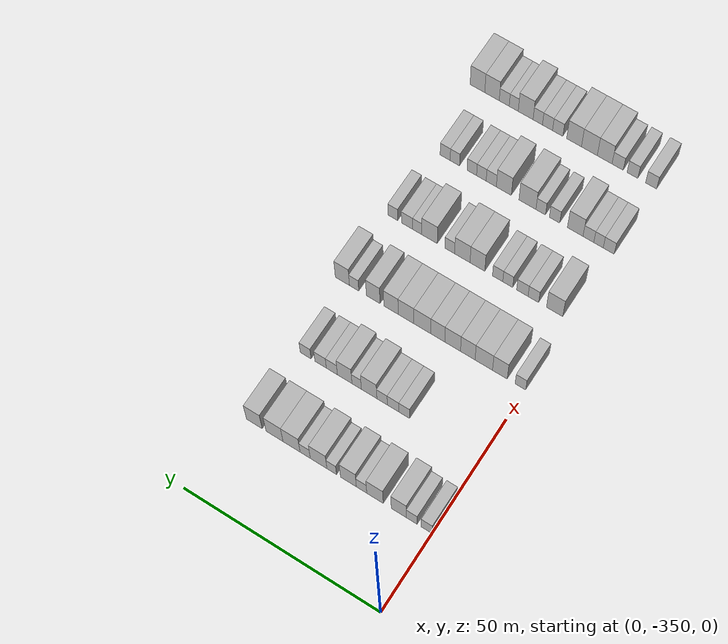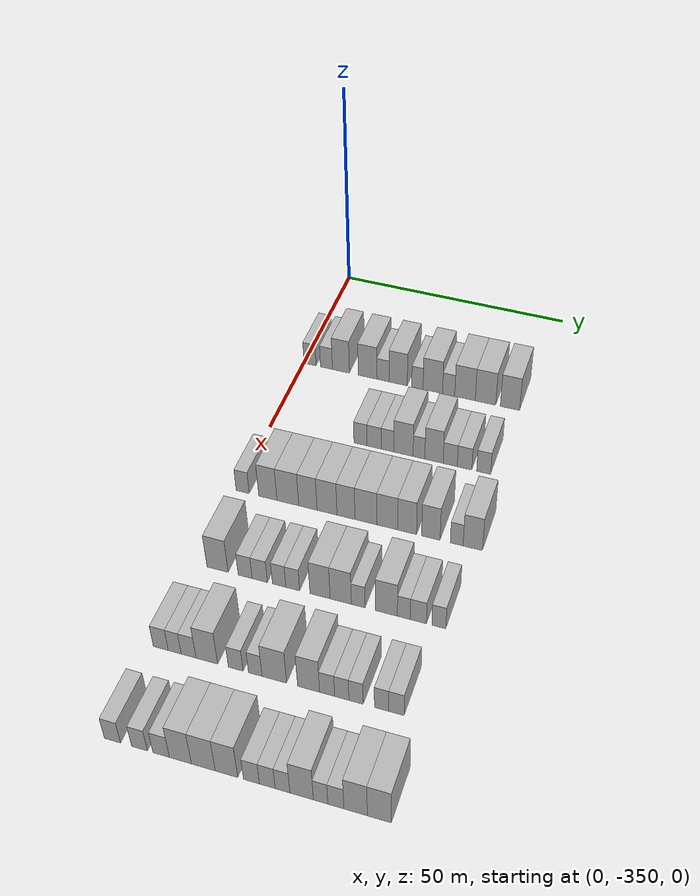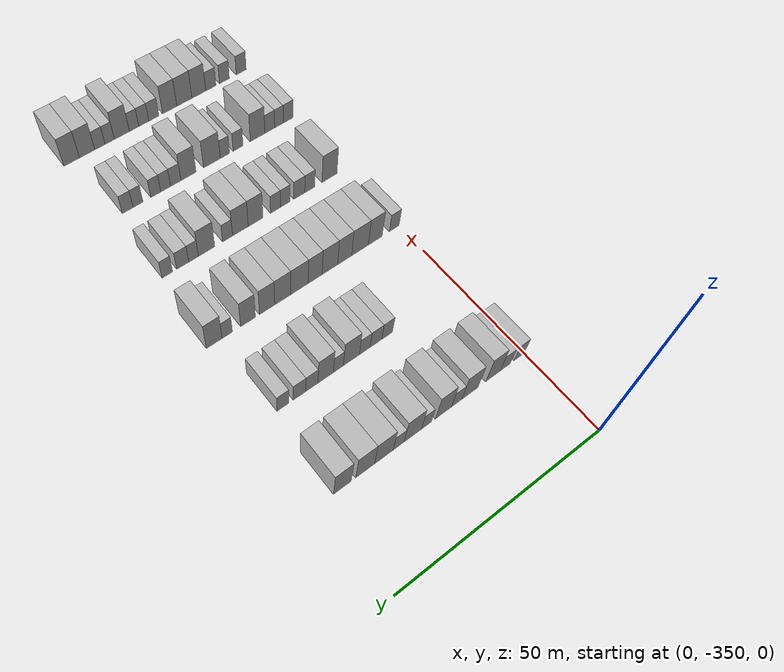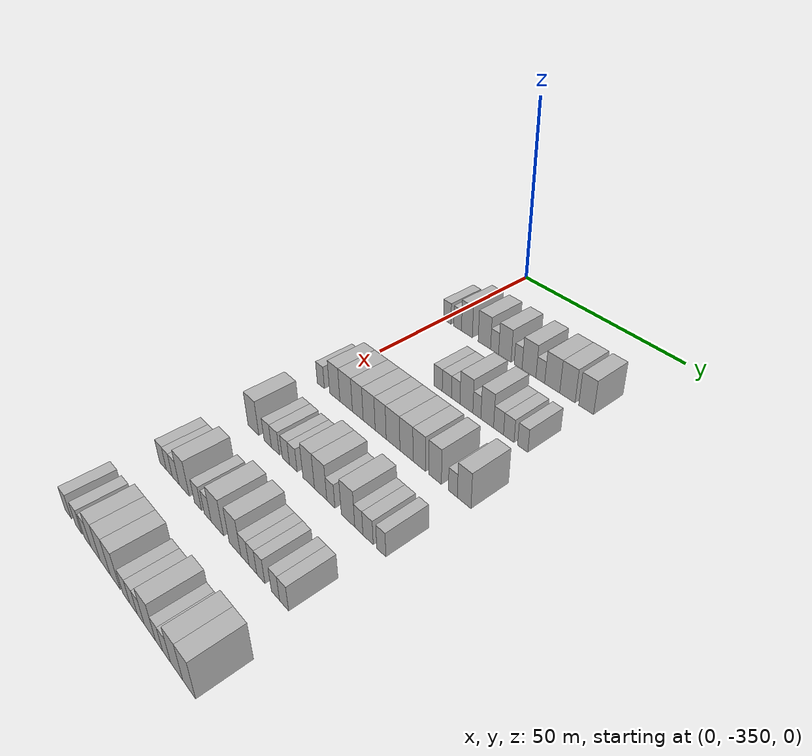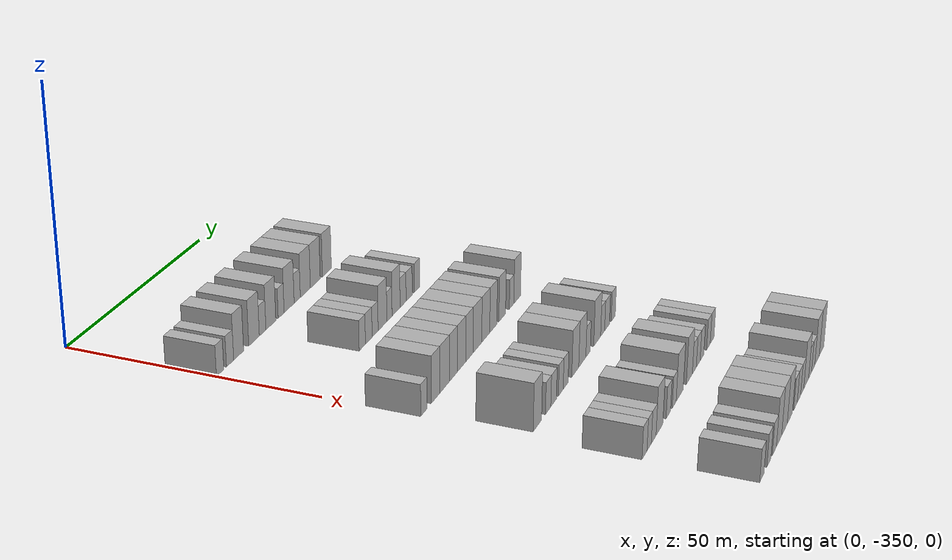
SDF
<sdf version="1.6">
 <world name="default">
  <model name="building_1">
   <static>1</static>
   <pose>25.0000 -348.6272 0 0.000000 0.000000 0.000000</pose>
   <link name="link">
    <pose>0 0 3.00 0 0 0</pose>
    <collision name="collision"><geometry><box><size>10.0000 2.7456 6.0000</size></box></geometry></collision>
    <visual name="visual">
     <cast_shadows>0</cast_shadows>
     <geometry><box><size>10.0000 2.7456 6.0000</size></box></geometry>
     <material>
      <script>
       <uri>model://HANNAS_wall/materials/scripts</uri>
       <uri>model://HANNAS_wall/materials/textures</uri>
       <name>vrc/HANNAS_wall</name>
      </script>
     </material>
    </visual>
   </link>
  </model>
  <model name="building_2">
   <static>1</static>
   <pose>25.0000 -344.8946 0 0.000000 0.000000 0.000000</pose>
   <link name="link">
    <pose>0 0 3.00 0 0 0</pose>
    <collision name="collision"><geometry><box><size>10.0000 2.7197 6.0000</size></box></geometry></collision>
    <visual name="visual">
     <cast_shadows>0</cast_shadows>
     <geometry><box><size>10.0000 2.7197 6.0000</size></box></geometry>
     <material>
      <script>
       <uri>model://HANNAS_wall/materials/scripts</uri>
       <uri>model://HANNAS_wall/materials/textures</uri>
       <name>vrc/HANNAS_wall</name>
      </script>
     </material>
    </visual>
   </link>
  </model>
  <model name="building_3">
   <static>1</static>
   <pose>25.0000 -341.6259 0 0.000000 0.000000 0.000000</pose>
   <link name="link">
    <pose>0 0 4.50 0 0 0</pose>
    <collision name="collision"><geometry><box><size>10.0000 3.8177 9.0000</size></box></geometry></collision>
    <visual name="visual">
     <cast_shadows>0</cast_shadows>
     <geometry><box><size>10.0000 3.8177 9.0000</size></box></geometry>
     <material>
      <script>
       <uri>model://HANNAS_wall/materials/scripts</uri>
       <uri>model://HANNAS_wall/materials/textures</uri>
       <name>vrc/HANNAS_wall</name>
      </script>
     </material>
    </visual>
   </link>
  </model>
  <model name="building_4">
   <static>1</static>
   <pose>25.0000 -335.6298 0 0.000000 0.000000 0.000000</pose>
   <link name="link">
    <pose>0 0 4.50 0 0 0</pose>
    <collision name="collision"><geometry><box><size>10.0000 4.1745 9.0000</size></box></geometry></collision>
    <visual name="visual">
     <cast_shadows>0</cast_shadows>
     <geometry><box><size>10.0000 4.1745 9.0000</size></box></geometry>
     <material>
      <script>
       <uri>model://HANNAS_wall/materials/scripts</uri>
       <uri>model://HANNAS_wall/materials/textures</uri>
       <name>vrc/HANNAS_wall</name>
      </script>
     </material>
    </visual>
   </link>
  </model>
  <model name="building_5">
   <static>1</static>
   <pose>25.0000 -332.2178 0 0.000000 0.000000 0.000000</pose>
   <link name="link">
    <pose>0 0 3.00 0 0 0</pose>
    <collision name="collision"><geometry><box><size>10.0000 2.6495 6.0000</size></box></geometry></collision>
    <visual name="visual">
     <cast_shadows>0</cast_shadows>
     <geometry><box><size>10.0000 2.6495 6.0000</size></box></geometry>
     <material>
      <script>
       <uri>model://HANNAS_wall/materials/scripts</uri>
       <uri>model://HANNAS_wall/materials/textures</uri>
       <name>vrc/HANNAS_wall</name>
      </script>
     </material>
    </visual>
   </link>
  </model>
  <model name="building_6">
   <static>1</static>
   <pose>25.0000 -328.8747 0 0.000000 0.000000 0.000000</pose>
   <link name="link">
    <pose>0 0 4.50 0 0 0</pose>
    <collision name="collision"><geometry><box><size>10.0000 4.0367 9.0000</size></box></geometry></collision>
    <visual name="visual">
     <cast_shadows>0</cast_shadows>
     <geometry><box><size>10.0000 4.0367 9.0000</size></box></geometry>
     <material>
      <script>
       <uri>model://HANNAS_wall/materials/scripts</uri>
       <uri>model://HANNAS_wall/materials/textures</uri>
       <name>vrc/HANNAS_wall</name>
      </script>
     </material>
    </visual>
   </link>
  </model>
  <model name="building_7">
   <static>1</static>
   <pose>25.0000 -324.6240 0 0.000000 0.000000 0.000000</pose>
   <link name="link">
    <pose>0 0 3.00 0 0 0</pose>
    <collision name="collision"><geometry><box><size>10.0000 2.4647 6.0000</size></box></geometry></collision>
    <visual name="visual">
     <cast_shadows>0</cast_shadows>
     <geometry><box><size>10.0000 2.4647 6.0000</size></box></geometry>
     <material>
      <script>
       <uri>model://HANNAS_wall/materials/scripts</uri>
       <uri>model://HANNAS_wall/materials/textures</uri>
       <name>vrc/HANNAS_wall</name>
      </script>
     </material>
    </visual>
   </link>
  </model>
  <model name="building_8">
   <static>1</static>
   <pose>25.0000 -321.2633 0 0.000000 0.000000 0.000000</pose>
   <link name="link">
    <pose>0 0 4.50 0 0 0</pose>
    <collision name="collision"><geometry><box><size>10.0000 4.2568 9.0000</size></box></geometry></collision>
    <visual name="visual">
     <cast_shadows>0</cast_shadows>
     <geometry><box><size>10.0000 4.2568 9.0000</size></box></geometry>
     <material>
      <script>
       <uri>model://HANNAS_wall/materials/scripts</uri>
       <uri>model://HANNAS_wall/materials/textures</uri>
       <name>vrc/HANNAS_wall</name>
      </script>
     </material>
    </visual>
   </link>
  </model>
  <model name="building_9">
   <static>1</static>
   <pose>25.0000 -317.8178 0 0.000000 0.000000 0.000000</pose>
   <link name="link">
    <pose>0 0 3.00 0 0 0</pose>
    <collision name="collision"><geometry><box><size>10.0000 2.6341 6.0000</size></box></geometry></collision>
    <visual name="visual">
     <cast_shadows>0</cast_shadows>
     <geometry><box><size>10.0000 2.6341 6.0000</size></box></geometry>
     <material>
      <script>
       <uri>model://HANNAS_wall/materials/scripts</uri>
       <uri>model://HANNAS_wall/materials/textures</uri>
       <name>vrc/HANNAS_wall</name>
      </script>
     </material>
    </visual>
   </link>
  </model>
  <model name="building_10">
   <static>1</static>
   <pose>25.0000 -314.2907 0 0.000000 0.000000 0.000000</pose>
   <link name="link">
    <pose>0 0 4.50 0 0 0</pose>
    <collision name="collision"><geometry><box><size>10.0000 4.4202 9.0000</size></box></geometry></collision>
    <visual name="visual">
     <cast_shadows>0</cast_shadows>
     <geometry><box><size>10.0000 4.4202 9.0000</size></box></geometry>
     <material>
      <script>
       <uri>model://HANNAS_wall/materials/scripts</uri>
       <uri>model://HANNAS_wall/materials/textures</uri>
       <name>vrc/HANNAS_wall</name>
      </script>
     </material>
    </visual>
   </link>
  </model>
  <model name="building_11">
   <static>1</static>
   <pose>25.0000 -309.8835 0 0.000000 0.000000 0.000000</pose>
   <link name="link">
    <pose>0 0 4.50 0 0 0</pose>
    <collision name="collision"><geometry><box><size>10.0000 4.3942 9.0000</size></box></geometry></collision>
    <visual name="visual">
     <cast_shadows>0</cast_shadows>
     <geometry><box><size>10.0000 4.3942 9.0000</size></box></geometry>
     <material>
      <script>
       <uri>model://HANNAS_wall/materials/scripts</uri>
       <uri>model://HANNAS_wall/materials/textures</uri>
       <name>vrc/HANNAS_wall</name>
      </script>
     </material>
    </visual>
   </link>
  </model>
  <model name="building_12">
   <static>1</static>
   <pose>25.0000 -304.6365 0 0.000000 0.000000 0.000000</pose>
   <link name="link">
    <pose>0 0 4.50 0 0 0</pose>
    <collision name="collision"><geometry><box><size>10.0000 4.0996 9.0000</size></box></geometry></collision>
    <visual name="visual">
     <cast_shadows>0</cast_shadows>
     <geometry><box><size>10.0000 4.0996 9.0000</size></box></geometry>
     <material>
      <script>
       <uri>model://HANNAS_wall/materials/scripts</uri>
       <uri>model://HANNAS_wall/materials/textures</uri>
       <name>vrc/HANNAS_wall</name>
      </script>
     </material>
    </visual>
   </link>
  </model>
  <model name="building_171">
   <static>1</static>
   <pose>44.0000 -330.8768 0 0.000000 0.000000 0.000000</pose>
   <link name="link">
    <pose>0 0 3.00 0 0 0</pose>
    <collision name="collision"><geometry><box><size>10.0000 2.7488 6.0000</size></box></geometry></collision>
    <visual name="visual">
     <cast_shadows>0</cast_shadows>
     <geometry><box><size>10.0000 2.7488 6.0000</size></box></geometry>
     <material>
      <script>
       <uri>model://HANNAS_wall/materials/scripts</uri>
       <uri>model://HANNAS_wall/materials/textures</uri>
       <name>vrc/HANNAS_wall</name>
      </script>
     </material>
    </visual>
   </link>
  </model>
  <model name="building_172">
   <static>1</static>
   <pose>44.0000 -328.0057 0 0.000000 0.000000 0.000000</pose>
   <link name="link">
    <pose>0 0 3.00 0 0 0</pose>
    <collision name="collision"><geometry><box><size>10.0000 2.9932 6.0000</size></box></geometry></collision>
    <visual name="visual">
     <cast_shadows>0</cast_shadows>
     <geometry><box><size>10.0000 2.9932 6.0000</size></box></geometry>
     <material>
      <script>
       <uri>model://HANNAS_wall/materials/scripts</uri>
       <uri>model://HANNAS_wall/materials/textures</uri>
       <name>vrc/HANNAS_wall</name>
      </script>
     </material>
    </visual>
   </link>
  </model>
  <model name="building_173">
   <static>1</static>
   <pose>44.0000 -325.1623 0 0.000000 0.000000 0.000000</pose>
   <link name="link">
    <pose>0 0 3.00 0 0 0</pose>
    <collision name="collision"><geometry><box><size>10.0000 2.6937 6.0000</size></box></geometry></collision>
    <visual name="visual">
     <cast_shadows>0</cast_shadows>
     <geometry><box><size>10.0000 2.6937 6.0000</size></box></geometry>
     <material>
      <script>
       <uri>model://HANNAS_wall/materials/scripts</uri>
       <uri>model://HANNAS_wall/materials/textures</uri>
       <name>vrc/HANNAS_wall</name>
      </script>
     </material>
    </visual>
   </link>
  </model>
  <model name="building_174">
   <static>1</static>
   <pose>44.0000 -321.8088 0 0.000000 0.000000 0.000000</pose>
   <link name="link">
    <pose>0 0 4.50 0 0 0</pose>
    <collision name="collision"><geometry><box><size>10.0000 4.0133 9.0000</size></box></geometry></collision>
    <visual name="visual">
     <cast_shadows>0</cast_shadows>
     <geometry><box><size>10.0000 4.0133 9.0000</size></box></geometry>
     <material>
      <script>
       <uri>model://HANNAS_wall/materials/scripts</uri>
       <uri>model://HANNAS_wall/materials/textures</uri>
       <name>vrc/HANNAS_wall</name>
      </script>
     </material>
    </visual>
   </link>
  </model>
  <model name="building_175">
   <static>1</static>
   <pose>44.0000 -318.5884 0 0.000000 0.000000 0.000000</pose>
   <link name="link">
    <pose>0 0 3.00 0 0 0</pose>
    <collision name="collision"><geometry><box><size>10.0000 2.4274 6.0000</size></box></geometry></collision>
    <visual name="visual">
     <cast_shadows>0</cast_shadows>
     <geometry><box><size>10.0000 2.4274 6.0000</size></box></geometry>
     <material>
      <script>
       <uri>model://HANNAS_wall/materials/scripts</uri>
       <uri>model://HANNAS_wall/materials/textures</uri>
       <name>vrc/HANNAS_wall</name>
      </script>
     </material>
    </visual>
   </link>
  </model>
  <model name="building_176">
   <static>1</static>
   <pose>44.0000 -315.4807 0 0.000000 0.000000 0.000000</pose>
   <link name="link">
    <pose>0 0 4.50 0 0 0</pose>
    <collision name="collision"><geometry><box><size>10.0000 3.7881 9.0000</size></box></geometry></collision>
    <visual name="visual">
     <cast_shadows>0</cast_shadows>
     <geometry><box><size>10.0000 3.7881 9.0000</size></box></geometry>
     <material>
      <script>
       <uri>model://HANNAS_wall/materials/scripts</uri>
       <uri>model://HANNAS_wall/materials/textures</uri>
       <name>vrc/HANNAS_wall</name>
      </script>
     </material>
    </visual>
   </link>
  </model>
  <model name="building_177">
   <static>1</static>
   <pose>44.0000 -312.1376 0 0.000000 0.000000 0.000000</pose>
   <link name="link">
    <pose>0 0 3.00 0 0 0</pose>
    <collision name="collision"><geometry><box><size>10.0000 2.8980 6.0000</size></box></geometry></collision>
    <visual name="visual">
     <cast_shadows>0</cast_shadows>
     <geometry><box><size>10.0000 2.8980 6.0000</size></box></geometry>
     <material>
      <script>
       <uri>model://HANNAS_wall/materials/scripts</uri>
       <uri>model://HANNAS_wall/materials/textures</uri>
       <name>vrc/HANNAS_wall</name>
      </script>
     </material>
    </visual>
   </link>
  </model>
  <model name="building_178">
   <static>1</static>
   <pose>44.0000 -309.1956 0 0.000000 0.000000 0.000000</pose>
   <link name="link">
    <pose>0 0 3.00 0 0 0</pose>
    <collision name="collision"><geometry><box><size>10.0000 2.9860 6.0000</size></box></geometry></collision>
    <visual name="visual">
     <cast_shadows>0</cast_shadows>
     <geometry><box><size>10.0000 2.9860 6.0000</size></box></geometry>
     <material>
      <script>
       <uri>model://HANNAS_wall/materials/scripts</uri>
       <uri>model://HANNAS_wall/materials/textures</uri>
       <name>vrc/HANNAS_wall</name>
      </script>
     </material>
    </visual>
   </link>
  </model>
  <model name="building_179">
   <static>1</static>
   <pose>44.0000 -305.2867 0 0.000000 0.000000 0.000000</pose>
   <link name="link">
    <pose>0 0 3.00 0 0 0</pose>
    <collision name="collision"><geometry><box><size>10.0000 2.8317 6.0000</size></box></geometry></collision>
    <visual name="visual">
     <cast_shadows>0</cast_shadows>
     <geometry><box><size>10.0000 2.8317 6.0000</size></box></geometry>
     <material>
      <script>
       <uri>model://HANNAS_wall/materials/scripts</uri>
       <uri>model://HANNAS_wall/materials/textures</uri>
       <name>vrc/HANNAS_wall</name>
      </script>
     </material>
    </visual>
   </link>
  </model>
  <model name="building_326">
   <static>1</static>
   <pose>63.0000 -348.6473 0 0.000000 0.000000 0.000000</pose>
   <link name="link">
    <pose>0 0 3.00 0 0 0</pose>
    <collision name="collision"><geometry><box><size>10.0000 2.7055 6.0000</size></box></geometry></collision>
    <visual name="visual">
     <cast_shadows>0</cast_shadows>
     <geometry><box><size>10.0000 2.7055 6.0000</size></box></geometry>
     <material>
      <script>
       <uri>model://HANNAS_wall/materials/scripts</uri>
       <uri>model://HANNAS_wall/materials/textures</uri>
       <name>vrc/HANNAS_wall</name>
      </script>
     </material>
    </visual>
   </link>
  </model>
  <model name="building_327">
   <static>1</static>
   <pose>63.0000 -343.4114 0 0.000000 0.000000 0.000000</pose>
   <link name="link">
    <pose>0 0 4.50 0 0 0</pose>
    <collision name="collision"><geometry><box><size>10.0000 3.7662 9.0000</size></box></geometry></collision>
    <visual name="visual">
     <cast_shadows>0</cast_shadows>
     <geometry><box><size>10.0000 3.7662 9.0000</size></box></geometry>
     <material>
      <script>
       <uri>model://HANNAS_wall/materials/scripts</uri>
       <uri>model://HANNAS_wall/materials/textures</uri>
       <name>vrc/HANNAS_wall</name>
      </script>
     </material>
    </visual>
   </link>
  </model>
  <model name="building_328">
   <static>1</static>
   <pose>63.0000 -339.2904 0 0.000000 0.000000 0.000000</pose>
   <link name="link">
    <pose>0 0 4.50 0 0 0</pose>
    <collision name="collision"><geometry><box><size>10.0000 4.4757 9.0000</size></box></geometry></collision>
    <visual name="visual">
     <cast_shadows>0</cast_shadows>
     <geometry><box><size>10.0000 4.4757 9.0000</size></box></geometry>
     <material>
      <script>
       <uri>model://HANNAS_wall/materials/scripts</uri>
       <uri>model://HANNAS_wall/materials/textures</uri>
       <name>vrc/HANNAS_wall</name>
      </script>
     </material>
    </visual>
   </link>
  </model>
  <model name="building_329">
   <static>1</static>
   <pose>63.0000 -335.1760 0 0.000000 0.000000 0.000000</pose>
   <link name="link">
    <pose>0 0 4.50 0 0 0</pose>
    <collision name="collision"><geometry><box><size>10.0000 3.7532 9.0000</size></box></geometry></collision>
    <visual name="visual">
     <cast_shadows>0</cast_shadows>
     <geometry><box><size>10.0000 3.7532 9.0000</size></box></geometry>
     <material>
      <script>
       <uri>model://HANNAS_wall/materials/scripts</uri>
       <uri>model://HANNAS_wall/materials/textures</uri>
       <name>vrc/HANNAS_wall</name>
      </script>
     </material>
    </visual>
   </link>
  </model>
  <model name="building_330">
   <static>1</static>
   <pose>63.0000 -331.2676 0 0.000000 0.000000 0.000000</pose>
   <link name="link">
    <pose>0 0 4.50 0 0 0</pose>
    <collision name="collision"><geometry><box><size>10.0000 4.0636 9.0000</size></box></geometry></collision>
    <visual name="visual">
     <cast_shadows>0</cast_shadows>
     <geometry><box><size>10.0000 4.0636 9.0000</size></box></geometry>
     <material>
      <script>
       <uri>model://HANNAS_wall/materials/scripts</uri>
       <uri>model://HANNAS_wall/materials/textures</uri>
       <name>vrc/HANNAS_wall</name>
      </script>
     </material>
    </visual>
   </link>
  </model>
  <model name="building_331">
   <static>1</static>
   <pose>63.0000 -327.4256 0 0.000000 0.000000 0.000000</pose>
   <link name="link">
    <pose>0 0 4.50 0 0 0</pose>
    <collision name="collision"><geometry><box><size>10.0000 3.6205 9.0000</size></box></geometry></collision>
    <visual name="visual">
     <cast_shadows>0</cast_shadows>
     <geometry><box><size>10.0000 3.6205 9.0000</size></box></geometry>
     <material>
      <script>
       <uri>model://HANNAS_wall/materials/scripts</uri>
       <uri>model://HANNAS_wall/materials/textures</uri>
       <name>vrc/HANNAS_wall</name>
      </script>
     </material>
    </visual>
   </link>
  </model>
  <model name="building_332">
   <static>1</static>
   <pose>63.0000 -323.4096 0 0.000000 0.000000 0.000000</pose>
   <link name="link">
    <pose>0 0 4.50 0 0 0</pose>
    <collision name="collision"><geometry><box><size>10.0000 4.4116 9.0000</size></box></geometry></collision>
    <visual name="visual">
     <cast_shadows>0</cast_shadows>
     <geometry><box><size>10.0000 4.4116 9.0000</size></box></geometry>
     <material>
      <script>
       <uri>model://HANNAS_wall/materials/scripts</uri>
       <uri>model://HANNAS_wall/materials/textures</uri>
       <name>vrc/HANNAS_wall</name>
      </script>
     </material>
    </visual>
   </link>
  </model>
  <model name="building_333">
   <static>1</static>
   <pose>63.0000 -319.1696 0 0.000000 0.000000 0.000000</pose>
   <link name="link">
    <pose>0 0 4.50 0 0 0</pose>
    <collision name="collision"><geometry><box><size>10.0000 4.0683 9.0000</size></box></geometry></collision>
    <visual name="visual">
     <cast_shadows>0</cast_shadows>
     <geometry><box><size>10.0000 4.0683 9.0000</size></box></geometry>
     <material>
      <script>
       <uri>model://HANNAS_wall/materials/scripts</uri>
       <uri>model://HANNAS_wall/materials/textures</uri>
       <name>vrc/HANNAS_wall</name>
      </script>
     </material>
    </visual>
   </link>
  </model>
  <model name="building_334">
   <static>1</static>
   <pose>63.0000 -315.2498 0 0.000000 0.000000 0.000000</pose>
   <link name="link">
    <pose>0 0 4.50 0 0 0</pose>
    <collision name="collision"><geometry><box><size>10.0000 3.7712 9.0000</size></box></geometry></collision>
    <visual name="visual">
     <cast_shadows>0</cast_shadows>
     <geometry><box><size>10.0000 3.7712 9.0000</size></box></geometry>
     <material>
      <script>
       <uri>model://HANNAS_wall/materials/scripts</uri>
       <uri>model://HANNAS_wall/materials/textures</uri>
       <name>vrc/HANNAS_wall</name>
      </script>
     </material>
    </visual>
   </link>
  </model>
  <model name="building_335">
   <static>1</static>
   <pose>63.0000 -310.5587 0 0.000000 0.000000 0.000000</pose>
   <link name="link">
    <pose>0 0 4.50 0 0 0</pose>
    <collision name="collision"><geometry><box><size>10.0000 3.6110 9.0000</size></box></geometry></collision>
    <visual name="visual">
     <cast_shadows>0</cast_shadows>
     <geometry><box><size>10.0000 3.6110 9.0000</size></box></geometry>
     <material>
      <script>
       <uri>model://HANNAS_wall/materials/scripts</uri>
       <uri>model://HANNAS_wall/materials/textures</uri>
       <name>vrc/HANNAS_wall</name>
      </script>
     </material>
    </visual>
   </link>
  </model>
  <model name="building_336">
   <static>1</static>
   <pose>63.0000 -305.5132 0 0.000000 0.000000 0.000000</pose>
   <link name="link">
    <pose>0 0 3.00 0 0 0</pose>
    <collision name="collision"><geometry><box><size>10.0000 2.4799 6.0000</size></box></geometry></collision>
    <visual name="visual">
     <cast_shadows>0</cast_shadows>
     <geometry><box><size>10.0000 2.4799 6.0000</size></box></geometry>
     <material>
      <script>
       <uri>model://HANNAS_wall/materials/scripts</uri>
       <uri>model://HANNAS_wall/materials/textures</uri>
       <name>vrc/HANNAS_wall</name>
      </script>
     </material>
    </visual>
   </link>
  </model>
  <model name="building_337">
   <static>1</static>
   <pose>63.0000 -302.4015 0 0.000000 0.000000 0.000000</pose>
   <link name="link">
    <pose>0 0 4.50 0 0 0</pose>
    <collision name="collision"><geometry><box><size>10.0000 3.7435 9.0000</size></box></geometry></collision>
    <visual name="visual">
     <cast_shadows>0</cast_shadows>
     <geometry><box><size>10.0000 3.7435 9.0000</size></box></geometry>
     <material>
      <script>
       <uri>model://HANNAS_wall/materials/scripts</uri>
       <uri>model://HANNAS_wall/materials/textures</uri>
       <name>vrc/HANNAS_wall</name>
      </script>
     </material>
    </visual>
   </link>
  </model>
  <model name="building_502">
   <static>1</static>
   <pose>82.0000 -345.8990 0 0.000000 0.000000 0.000000</pose>
   <link name="link">
    <pose>0 0 4.50 0 0 0</pose>
    <collision name="collision"><geometry><box><size>10.0000 4.2019 9.0000</size></box></geometry></collision>
    <visual name="visual">
     <cast_shadows>0</cast_shadows>
     <geometry><box><size>10.0000 4.2019 9.0000</size></box></geometry>
     <material>
      <script>
       <uri>model://HANNAS_wall/materials/scripts</uri>
       <uri>model://HANNAS_wall/materials/textures</uri>
       <name>vrc/HANNAS_wall</name>
      </script>
     </material>
    </visual>
   </link>
  </model>
  <model name="building_503">
   <static>1</static>
   <pose>82.0000 -340.4247 0 0.000000 0.000000 0.000000</pose>
   <link name="link">
    <pose>0 0 3.00 0 0 0</pose>
    <collision name="collision"><geometry><box><size>10.0000 2.7467 6.0000</size></box></geometry></collision>
    <visual name="visual">
     <cast_shadows>0</cast_shadows>
     <geometry><box><size>10.0000 2.7467 6.0000</size></box></geometry>
     <material>
      <script>
       <uri>model://HANNAS_wall/materials/scripts</uri>
       <uri>model://HANNAS_wall/materials/textures</uri>
       <name>vrc/HANNAS_wall</name>
      </script>
     </material>
    </visual>
   </link>
  </model>
  <model name="building_504">
   <static>1</static>
   <pose>82.0000 -337.5647 0 0.000000 0.000000 0.000000</pose>
   <link name="link">
    <pose>0 0 3.00 0 0 0</pose>
    <collision name="collision"><geometry><box><size>10.0000 2.9734 6.0000</size></box></geometry></collision>
    <visual name="visual">
     <cast_shadows>0</cast_shadows>
     <geometry><box><size>10.0000 2.9734 6.0000</size></box></geometry>
     <material>
      <script>
       <uri>model://HANNAS_wall/materials/scripts</uri>
       <uri>model://HANNAS_wall/materials/textures</uri>
       <name>vrc/HANNAS_wall</name>
      </script>
     </material>
    </visual>
   </link>
  </model>
  <model name="building_505">
   <static>1</static>
   <pose>82.0000 -333.7807 0 0.000000 0.000000 0.000000</pose>
   <link name="link">
    <pose>0 0 3.00 0 0 0</pose>
    <collision name="collision"><geometry><box><size>10.0000 2.5945 6.0000</size></box></geometry></collision>
    <visual name="visual">
     <cast_shadows>0</cast_shadows>
     <geometry><box><size>10.0000 2.5945 6.0000</size></box></geometry>
     <material>
      <script>
       <uri>model://HANNAS_wall/materials/scripts</uri>
       <uri>model://HANNAS_wall/materials/textures</uri>
       <name>vrc/HANNAS_wall</name>
      </script>
     </material>
    </visual>
   </link>
  </model>
  <model name="building_506">
   <static>1</static>
   <pose>82.0000 -331.1427 0 0.000000 0.000000 0.000000</pose>
   <link name="link">
    <pose>0 0 3.00 0 0 0</pose>
    <collision name="collision"><geometry><box><size>10.0000 2.6815 6.0000</size></box></geometry></collision>
    <visual name="visual">
     <cast_shadows>0</cast_shadows>
     <geometry><box><size>10.0000 2.6815 6.0000</size></box></geometry>
     <material>
      <script>
       <uri>model://HANNAS_wall/materials/scripts</uri>
       <uri>model://HANNAS_wall/materials/textures</uri>
       <name>vrc/HANNAS_wall</name>
      </script>
     </material>
    </visual>
   </link>
  </model>
  <model name="building_507">
   <static>1</static>
   <pose>82.0000 -325.8641 0 0.000000 0.000000 0.000000</pose>
   <link name="link">
    <pose>0 0 4.50 0 0 0</pose>
    <collision name="collision"><geometry><box><size>10.0000 3.8759 9.0000</size></box></geometry></collision>
    <visual name="visual">
     <cast_shadows>0</cast_shadows>
     <geometry><box><size>10.0000 3.8759 9.0000</size></box></geometry>
     <material>
      <script>
       <uri>model://HANNAS_wall/materials/scripts</uri>
       <uri>model://HANNAS_wall/materials/textures</uri>
       <name>vrc/HANNAS_wall</name>
      </script>
     </material>
    </visual>
   </link>
  </model>
  <model name="building_508">
   <static>1</static>
   <pose>82.0000 -321.8990 0 0.000000 0.000000 0.000000</pose>
   <link name="link">
    <pose>0 0 4.50 0 0 0</pose>
    <collision name="collision"><geometry><box><size>10.0000 4.0542 9.0000</size></box></geometry></collision>
    <visual name="visual">
     <cast_shadows>0</cast_shadows>
     <geometry><box><size>10.0000 4.0542 9.0000</size></box></geometry>
     <material>
      <script>
       <uri>model://HANNAS_wall/materials/scripts</uri>
       <uri>model://HANNAS_wall/materials/textures</uri>
       <name>vrc/HANNAS_wall</name>
      </script>
     </material>
    </visual>
   </link>
  </model>
  <model name="building_509">
   <static>1</static>
   <pose>82.0000 -318.5912 0 0.000000 0.000000 0.000000</pose>
   <link name="link">
    <pose>0 0 3.00 0 0 0</pose>
    <collision name="collision"><geometry><box><size>10.0000 2.5614 6.0000</size></box></geometry></collision>
    <visual name="visual">
     <cast_shadows>0</cast_shadows>
     <geometry><box><size>10.0000 2.5614 6.0000</size></box></geometry>
     <material>
      <script>
       <uri>model://HANNAS_wall/materials/scripts</uri>
       <uri>model://HANNAS_wall/materials/textures</uri>
       <name>vrc/HANNAS_wall</name>
      </script>
     </material>
    </visual>
   </link>
  </model>
  <model name="building_510">
   <static>1</static>
   <pose>82.0000 -313.2574 0 0.000000 0.000000 0.000000</pose>
   <link name="link">
    <pose>0 0 4.50 0 0 0</pose>
    <collision name="collision"><geometry><box><size>10.0000 4.1063 9.0000</size></box></geometry></collision>
    <visual name="visual">
     <cast_shadows>0</cast_shadows>
     <geometry><box><size>10.0000 4.1063 9.0000</size></box></geometry>
     <material>
      <script>
       <uri>model://HANNAS_wall/materials/scripts</uri>
       <uri>model://HANNAS_wall/materials/textures</uri>
       <name>vrc/HANNAS_wall</name>
      </script>
     </material>
    </visual>
   </link>
  </model>
  <model name="building_511">
   <static>1</static>
   <pose>82.0000 -309.9973 0 0.000000 0.000000 0.000000</pose>
   <link name="link">
    <pose>0 0 3.00 0 0 0</pose>
    <collision name="collision"><geometry><box><size>10.0000 2.4139 6.0000</size></box></geometry></collision>
    <visual name="visual">
     <cast_shadows>0</cast_shadows>
     <geometry><box><size>10.0000 2.4139 6.0000</size></box></geometry>
     <material>
      <script>
       <uri>model://HANNAS_wall/materials/scripts</uri>
       <uri>model://HANNAS_wall/materials/textures</uri>
       <name>vrc/HANNAS_wall</name>
      </script>
     </material>
    </visual>
   </link>
  </model>
  <model name="building_512">
   <static>1</static>
   <pose>82.0000 -307.2985 0 0.000000 0.000000 0.000000</pose>
   <link name="link">
    <pose>0 0 3.00 0 0 0</pose>
    <collision name="collision"><geometry><box><size>10.0000 2.9836 6.0000</size></box></geometry></collision>
    <visual name="visual">
     <cast_shadows>0</cast_shadows>
     <geometry><box><size>10.0000 2.9836 6.0000</size></box></geometry>
     <material>
      <script>
       <uri>model://HANNAS_wall/materials/scripts</uri>
       <uri>model://HANNAS_wall/materials/textures</uri>
       <name>vrc/HANNAS_wall</name>
      </script>
     </material>
    </visual>
   </link>
  </model>
  <model name="building_513">
   <static>1</static>
   <pose>82.0000 -303.5210 0 0.000000 0.000000 0.000000</pose>
   <link name="link">
    <pose>0 0 3.00 0 0 0</pose>
    <collision name="collision"><geometry><box><size>10.0000 2.5714 6.0000</size></box></geometry></collision>
    <visual name="visual">
     <cast_shadows>0</cast_shadows>
     <geometry><box><size>10.0000 2.5714 6.0000</size></box></geometry>
     <material>
      <script>
       <uri>model://HANNAS_wall/materials/scripts</uri>
       <uri>model://HANNAS_wall/materials/textures</uri>
       <name>vrc/HANNAS_wall</name>
      </script>
     </material>
    </visual>
   </link>
  </model>
  <model name="building_665">
   <static>1</static>
   <pose>101.0000 -348.5762 0 0.000000 0.000000 0.000000</pose>
   <link name="link">
    <pose>0 0 3.00 0 0 0</pose>
    <collision name="collision"><geometry><box><size>10.0000 2.8475 6.0000</size></box></geometry></collision>
    <visual name="visual">
     <cast_shadows>0</cast_shadows>
     <geometry><box><size>10.0000 2.8475 6.0000</size></box></geometry>
     <material>
      <script>
       <uri>model://HANNAS_wall/materials/scripts</uri>
       <uri>model://HANNAS_wall/materials/textures</uri>
       <name>vrc/HANNAS_wall</name>
      </script>
     </material>
    </visual>
   </link>
  </model>
  <model name="building_666">
   <static>1</static>
   <pose>101.0000 -345.9252 0 0.000000 0.000000 0.000000</pose>
   <link name="link">
    <pose>0 0 3.00 0 0 0</pose>
    <collision name="collision"><geometry><box><size>10.0000 2.4545 6.0000</size></box></geometry></collision>
    <visual name="visual">
     <cast_shadows>0</cast_shadows>
     <geometry><box><size>10.0000 2.4545 6.0000</size></box></geometry>
     <material>
      <script>
       <uri>model://HANNAS_wall/materials/scripts</uri>
       <uri>model://HANNAS_wall/materials/textures</uri>
       <name>vrc/HANNAS_wall</name>
      </script>
     </material>
    </visual>
   </link>
  </model>
  <model name="building_667">
   <static>1</static>
   <pose>101.0000 -343.2992 0 0.000000 0.000000 0.000000</pose>
   <link name="link">
    <pose>0 0 3.00 0 0 0</pose>
    <collision name="collision"><geometry><box><size>10.0000 2.7976 6.0000</size></box></geometry></collision>
    <visual name="visual">
     <cast_shadows>0</cast_shadows>
     <geometry><box><size>10.0000 2.7976 6.0000</size></box></geometry>
     <material>
      <script>
       <uri>model://HANNAS_wall/materials/scripts</uri>
       <uri>model://HANNAS_wall/materials/textures</uri>
       <name>vrc/HANNAS_wall</name>
      </script>
     </material>
    </visual>
   </link>
  </model>
  <model name="building_668">
   <static>1</static>
   <pose>101.0000 -339.8668 0 0.000000 0.000000 0.000000</pose>
   <link name="link">
    <pose>0 0 4.50 0 0 0</pose>
    <collision name="collision"><geometry><box><size>10.0000 4.0673 9.0000</size></box></geometry></collision>
    <visual name="visual">
     <cast_shadows>0</cast_shadows>
     <geometry><box><size>10.0000 4.0673 9.0000</size></box></geometry>
     <material>
      <script>
       <uri>model://HANNAS_wall/materials/scripts</uri>
       <uri>model://HANNAS_wall/materials/textures</uri>
       <name>vrc/HANNAS_wall</name>
      </script>
     </material>
    </visual>
   </link>
  </model>
  <model name="building_669">
   <static>1</static>
   <pose>101.0000 -334.4676 0 0.000000 0.000000 0.000000</pose>
   <link name="link">
    <pose>0 0 3.00 0 0 0</pose>
    <collision name="collision"><geometry><box><size>10.0000 2.7312 6.0000</size></box></geometry></collision>
    <visual name="visual">
     <cast_shadows>0</cast_shadows>
     <geometry><box><size>10.0000 2.7312 6.0000</size></box></geometry>
     <material>
      <script>
       <uri>model://HANNAS_wall/materials/scripts</uri>
       <uri>model://HANNAS_wall/materials/textures</uri>
       <name>vrc/HANNAS_wall</name>
      </script>
     </material>
    </visual>
   </link>
  </model>
  <model name="building_670">
   <static>1</static>
   <pose>101.0000 -330.8441 0 0.000000 0.000000 0.000000</pose>
   <link name="link">
    <pose>0 0 3.00 0 0 0</pose>
    <collision name="collision"><geometry><box><size>10.0000 2.5156 6.0000</size></box></geometry></collision>
    <visual name="visual">
     <cast_shadows>0</cast_shadows>
     <geometry><box><size>10.0000 2.5156 6.0000</size></box></geometry>
     <material>
      <script>
       <uri>model://HANNAS_wall/materials/scripts</uri>
       <uri>model://HANNAS_wall/materials/textures</uri>
       <name>vrc/HANNAS_wall</name>
      </script>
     </material>
    </visual>
   </link>
  </model>
  <model name="building_671">
   <static>1</static>
   <pose>101.0000 -327.3417 0 0.000000 0.000000 0.000000</pose>
   <link name="link">
    <pose>0 0 4.50 0 0 0</pose>
    <collision name="collision"><geometry><box><size>10.0000 4.4892 9.0000</size></box></geometry></collision>
    <visual name="visual">
     <cast_shadows>0</cast_shadows>
     <geometry><box><size>10.0000 4.4892 9.0000</size></box></geometry>
     <material>
      <script>
       <uri>model://HANNAS_wall/materials/scripts</uri>
       <uri>model://HANNAS_wall/materials/textures</uri>
       <name>vrc/HANNAS_wall</name>
      </script>
     </material>
    </visual>
   </link>
  </model>
  <model name="building_672">
   <static>1</static>
   <pose>101.0000 -321.1033 0 0.000000 0.000000 0.000000</pose>
   <link name="link">
    <pose>0 0 4.50 0 0 0</pose>
    <collision name="collision"><geometry><box><size>10.0000 3.9876 9.0000</size></box></geometry></collision>
    <visual name="visual">
     <cast_shadows>0</cast_shadows>
     <geometry><box><size>10.0000 3.9876 9.0000</size></box></geometry>
     <material>
      <script>
       <uri>model://HANNAS_wall/materials/scripts</uri>
       <uri>model://HANNAS_wall/materials/textures</uri>
       <name>vrc/HANNAS_wall</name>
      </script>
     </material>
    </visual>
   </link>
  </model>
  <model name="building_673">
   <static>1</static>
   <pose>101.0000 -317.7590 0 0.000000 0.000000 0.000000</pose>
   <link name="link">
    <pose>0 0 3.00 0 0 0</pose>
    <collision name="collision"><geometry><box><size>10.0000 2.7011 6.0000</size></box></geometry></collision>
    <visual name="visual">
     <cast_shadows>0</cast_shadows>
     <geometry><box><size>10.0000 2.7011 6.0000</size></box></geometry>
     <material>
      <script>
       <uri>model://HANNAS_wall/materials/scripts</uri>
       <uri>model://HANNAS_wall/materials/textures</uri>
       <name>vrc/HANNAS_wall</name>
      </script>
     </material>
    </visual>
   </link>
  </model>
  <model name="building_674">
   <static>1</static>
   <pose>101.0000 -315.1332 0 0.000000 0.000000 0.000000</pose>
   <link name="link">
    <pose>0 0 3.00 0 0 0</pose>
    <collision name="collision"><geometry><box><size>10.0000 2.5505 6.0000</size></box></geometry></collision>
    <visual name="visual">
     <cast_shadows>0</cast_shadows>
     <geometry><box><size>10.0000 2.5505 6.0000</size></box></geometry>
     <material>
      <script>
       <uri>model://HANNAS_wall/materials/scripts</uri>
       <uri>model://HANNAS_wall/materials/textures</uri>
       <name>vrc/HANNAS_wall</name>
      </script>
     </material>
    </visual>
   </link>
  </model>
  <model name="building_675">
   <static>1</static>
   <pose>101.0000 -312.5828 0 0.000000 0.000000 0.000000</pose>
   <link name="link">
    <pose>0 0 3.00 0 0 0</pose>
    <collision name="collision"><geometry><box><size>10.0000 2.5502 6.0000</size></box></geometry></collision>
    <visual name="visual">
     <cast_shadows>0</cast_shadows>
     <geometry><box><size>10.0000 2.5502 6.0000</size></box></geometry>
     <material>
      <script>
       <uri>model://HANNAS_wall/materials/scripts</uri>
       <uri>model://HANNAS_wall/materials/textures</uri>
       <name>vrc/HANNAS_wall</name>
      </script>
     </material>
    </visual>
   </link>
  </model>
  <model name="building_676">
   <static>1</static>
   <pose>101.0000 -308.0518 0 0.000000 0.000000 0.000000</pose>
   <link name="link">
    <pose>0 0 3.00 0 0 0</pose>
    <collision name="collision"><geometry><box><size>10.0000 2.5119 6.0000</size></box></geometry></collision>
    <visual name="visual">
     <cast_shadows>0</cast_shadows>
     <geometry><box><size>10.0000 2.5119 6.0000</size></box></geometry>
     <material>
      <script>
       <uri>model://HANNAS_wall/materials/scripts</uri>
       <uri>model://HANNAS_wall/materials/textures</uri>
       <name>vrc/HANNAS_wall</name>
      </script>
     </material>
    </visual>
   </link>
  </model>
  <model name="building_677">
   <static>1</static>
   <pose>101.0000 -305.4405 0 0.000000 0.000000 0.000000</pose>
   <link name="link">
    <pose>0 0 3.00 0 0 0</pose>
    <collision name="collision"><geometry><box><size>10.0000 2.7106 6.0000</size></box></geometry></collision>
    <visual name="visual">
     <cast_shadows>0</cast_shadows>
     <geometry><box><size>10.0000 2.7106 6.0000</size></box></geometry>
     <material>
      <script>
       <uri>model://HANNAS_wall/materials/scripts</uri>
       <uri>model://HANNAS_wall/materials/textures</uri>
       <name>vrc/HANNAS_wall</name>
      </script>
     </material>
    </visual>
   </link>
  </model>
  <model name="building_844">
   <static>1</static>
   <pose>120.0000 -348.5423 0 0.000000 0.000000 0.000000</pose>
   <link name="link">
    <pose>0 0 3.00 0 0 0</pose>
    <collision name="collision"><geometry><box><size>10.0000 2.9155 6.0000</size></box></geometry></collision>
    <visual name="visual">
     <cast_shadows>0</cast_shadows>
     <geometry><box><size>10.0000 2.9155 6.0000</size></box></geometry>
     <material>
      <script>
       <uri>model://HANNAS_wall/materials/scripts</uri>
       <uri>model://HANNAS_wall/materials/textures</uri>
       <name>vrc/HANNAS_wall</name>
      </script>
     </material>
    </visual>
   </link>
  </model>
  <model name="building_845">
   <static>1</static>
   <pose>120.0000 -343.6675 0 0.000000 0.000000 0.000000</pose>
   <link name="link">
    <pose>0 0 3.00 0 0 0</pose>
    <collision name="collision"><geometry><box><size>10.0000 2.8340 6.0000</size></box></geometry></collision>
    <visual name="visual">
     <cast_shadows>0</cast_shadows>
     <geometry><box><size>10.0000 2.8340 6.0000</size></box></geometry>
     <material>
      <script>
       <uri>model://HANNAS_wall/materials/scripts</uri>
       <uri>model://HANNAS_wall/materials/textures</uri>
       <name>vrc/HANNAS_wall</name>
      </script>
     </material>
    </visual>
   </link>
  </model>
  <model name="building_846">
   <static>1</static>
   <pose>120.0000 -339.7758 0 0.000000 0.000000 0.000000</pose>
   <link name="link">
    <pose>0 0 3.00 0 0 0</pose>
    <collision name="collision"><geometry><box><size>10.0000 2.9495 6.0000</size></box></geometry></collision>
    <visual name="visual">
     <cast_shadows>0</cast_shadows>
     <geometry><box><size>10.0000 2.9495 6.0000</size></box></geometry>
     <material>
      <script>
       <uri>model://HANNAS_wall/materials/scripts</uri>
       <uri>model://HANNAS_wall/materials/textures</uri>
       <name>vrc/HANNAS_wall</name>
      </script>
     </material>
    </visual>
   </link>
  </model>
  <model name="building_847">
   <static>1</static>
   <pose>120.0000 -336.3543 0 0.000000 0.000000 0.000000</pose>
   <link name="link">
    <pose>0 0 4.50 0 0 0</pose>
    <collision name="collision"><geometry><box><size>10.0000 3.8935 9.0000</size></box></geometry></collision>
    <visual name="visual">
     <cast_shadows>0</cast_shadows>
     <geometry><box><size>10.0000 3.8935 9.0000</size></box></geometry>
     <material>
      <script>
       <uri>model://HANNAS_wall/materials/scripts</uri>
       <uri>model://HANNAS_wall/materials/textures</uri>
       <name>vrc/HANNAS_wall</name>
      </script>
     </material>
    </visual>
   </link>
  </model>
  <model name="building_848">
   <static>1</static>
   <pose>120.0000 -332.3111 0 0.000000 0.000000 0.000000</pose>
   <link name="link">
    <pose>0 0 4.50 0 0 0</pose>
    <collision name="collision"><geometry><box><size>10.0000 4.1931 9.0000</size></box></geometry></collision>
    <visual name="visual">
     <cast_shadows>0</cast_shadows>
     <geometry><box><size>10.0000 4.1931 9.0000</size></box></geometry>
     <material>
      <script>
       <uri>model://HANNAS_wall/materials/scripts</uri>
       <uri>model://HANNAS_wall/materials/textures</uri>
       <name>vrc/HANNAS_wall</name>
      </script>
     </material>
    </visual>
   </link>
  </model>
  <model name="building_849">
   <static>1</static>
   <pose>120.0000 -328.2518 0 0.000000 0.000000 0.000000</pose>
   <link name="link">
    <pose>0 0 4.50 0 0 0</pose>
    <collision name="collision"><geometry><box><size>10.0000 3.9254 9.0000</size></box></geometry></collision>
    <visual name="visual">
     <cast_shadows>0</cast_shadows>
     <geometry><box><size>10.0000 3.9254 9.0000</size></box></geometry>
     <material>
      <script>
       <uri>model://HANNAS_wall/materials/scripts</uri>
       <uri>model://HANNAS_wall/materials/textures</uri>
       <name>vrc/HANNAS_wall</name>
      </script>
     </material>
    </visual>
   </link>
  </model>
  <model name="building_850">
   <static>1</static>
   <pose>120.0000 -323.9106 0 0.000000 0.000000 0.000000</pose>
   <link name="link">
    <pose>0 0 3.00 0 0 0</pose>
    <collision name="collision"><geometry><box><size>10.0000 2.7571 6.0000</size></box></geometry></collision>
    <visual name="visual">
     <cast_shadows>0</cast_shadows>
     <geometry><box><size>10.0000 2.7571 6.0000</size></box></geometry>
     <material>
      <script>
       <uri>model://HANNAS_wall/materials/scripts</uri>
       <uri>model://HANNAS_wall/materials/textures</uri>
       <name>vrc/HANNAS_wall</name>
      </script>
     </material>
    </visual>
   </link>
  </model>
  <model name="building_851">
   <static>1</static>
   <pose>120.0000 -321.1836 0 0.000000 0.000000 0.000000</pose>
   <link name="link">
    <pose>0 0 3.00 0 0 0</pose>
    <collision name="collision"><geometry><box><size>10.0000 2.6969 6.0000</size></box></geometry></collision>
    <visual name="visual">
     <cast_shadows>0</cast_shadows>
     <geometry><box><size>10.0000 2.6969 6.0000</size></box></geometry>
     <material>
      <script>
       <uri>model://HANNAS_wall/materials/scripts</uri>
       <uri>model://HANNAS_wall/materials/textures</uri>
       <name>vrc/HANNAS_wall</name>
      </script>
     </material>
    </visual>
   </link>
  </model>
  <model name="building_852">
   <static>1</static>
   <pose>120.0000 -318.5760 0 0.000000 0.000000 0.000000</pose>
   <link name="link">
    <pose>0 0 3.00 0 0 0</pose>
    <collision name="collision"><geometry><box><size>10.0000 2.5183 6.0000</size></box></geometry></collision>
    <visual name="visual">
     <cast_shadows>0</cast_shadows>
     <geometry><box><size>10.0000 2.5183 6.0000</size></box></geometry>
     <material>
      <script>
       <uri>model://HANNAS_wall/materials/scripts</uri>
       <uri>model://HANNAS_wall/materials/textures</uri>
       <name>vrc/HANNAS_wall</name>
      </script>
     </material>
    </visual>
   </link>
  </model>
  <model name="building_853">
   <static>1</static>
   <pose>120.0000 -315.3239 0 0.000000 0.000000 0.000000</pose>
   <link name="link">
    <pose>0 0 4.50 0 0 0</pose>
    <collision name="collision"><geometry><box><size>10.0000 3.9859 9.0000</size></box></geometry></collision>
    <visual name="visual">
     <cast_shadows>0</cast_shadows>
     <geometry><box><size>10.0000 3.9859 9.0000</size></box></geometry>
     <material>
      <script>
       <uri>model://HANNAS_wall/materials/scripts</uri>
       <uri>model://HANNAS_wall/materials/textures</uri>
       <name>vrc/HANNAS_wall</name>
      </script>
     </material>
    </visual>
   </link>
  </model>
  <model name="building_854">
   <static>1</static>
   <pose>120.0000 -312.1095 0 0.000000 0.000000 0.000000</pose>
   <link name="link">
    <pose>0 0 3.00 0 0 0</pose>
    <collision name="collision"><geometry><box><size>10.0000 2.4430 6.0000</size></box></geometry></collision>
    <visual name="visual">
     <cast_shadows>0</cast_shadows>
     <geometry><box><size>10.0000 2.4430 6.0000</size></box></geometry>
     <material>
      <script>
       <uri>model://HANNAS_wall/materials/scripts</uri>
       <uri>model://HANNAS_wall/materials/textures</uri>
       <name>vrc/HANNAS_wall</name>
      </script>
     </material>
    </visual>
   </link>
  </model>
  <model name="building_855">
   <static>1</static>
   <pose>120.0000 -309.5471 0 0.000000 0.000000 0.000000</pose>
   <link name="link">
    <pose>0 0 3.00 0 0 0</pose>
    <collision name="collision"><geometry><box><size>10.0000 2.6818 6.0000</size></box></geometry></collision>
    <visual name="visual">
     <cast_shadows>0</cast_shadows>
     <geometry><box><size>10.0000 2.6818 6.0000</size></box></geometry>
     <material>
      <script>
       <uri>model://HANNAS_wall/materials/scripts</uri>
       <uri>model://HANNAS_wall/materials/textures</uri>
       <name>vrc/HANNAS_wall</name>
      </script>
     </material>
    </visual>
   </link>
  </model>
  <model name="building_856">
   <static>1</static>
   <pose>120.0000 -306.2474 0 0.000000 0.000000 0.000000</pose>
   <link name="link">
    <pose>0 0 4.50 0 0 0</pose>
    <collision name="collision"><geometry><box><size>10.0000 3.9176 9.0000</size></box></geometry></collision>
    <visual name="visual">
     <cast_shadows>0</cast_shadows>
     <geometry><box><size>10.0000 3.9176 9.0000</size></box></geometry>
     <material>
      <script>
       <uri>model://HANNAS_wall/materials/scripts</uri>
       <uri>model://HANNAS_wall/materials/textures</uri>
       <name>vrc/HANNAS_wall</name>
      </script>
     </material>
    </visual>
   </link>
  </model>
  <model name="building_857">
   <static>1</static>
   <pose>120.0000 -302.3004 0 0.000000 0.000000 0.000000</pose>
   <link name="link">
    <pose>0 0 4.50 0 0 0</pose>
    <collision name="collision"><geometry><box><size>10.0000 3.9764 9.0000</size></box></geometry></collision>
    <visual name="visual">
     <cast_shadows>0</cast_shadows>
     <geometry><box><size>10.0000 3.9764 9.0000</size></box></geometry>
     <material>
      <script>
       <uri>model://HANNAS_wall/materials/scripts</uri>
       <uri>model://HANNAS_wall/materials/textures</uri>
       <name>vrc/HANNAS_wall</name>
      </script>
     </material>
    </visual>
   </link>
  </model>
 </world>
</sdf>
